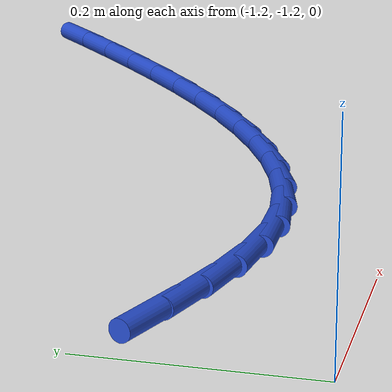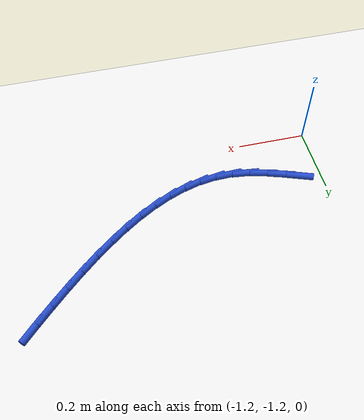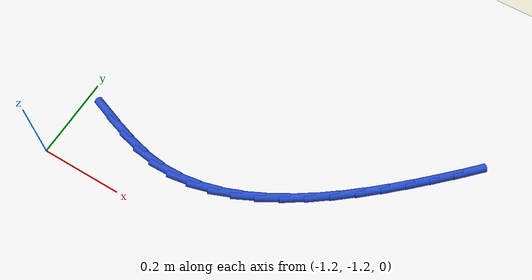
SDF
<sdf version="1.6">
 <world name="default">
  <model name="ground_plane">
   <static>1</static>
   <link name="link">
    <collision name="collision">
     <geometry><plane><normal>0 0 1</normal><size>100 100</size></plane></geometry>
     <surface><friction><ode><mu>100</mu><mu2>50</mu2></ode></friction></surface>
    </collision>
    <visual name="visual">
     <cast_shadows>0</cast_shadows>
     <geometry><plane><normal>0 0 1</normal><size>100 100</size></plane></geometry>
     <material>
      <script><uri>file://media/materials/scripts/gazebo.material</uri><name>Gazebo/WhiteGlow</name></script>
     </material>
    </visual>
   </link>
  </model>
  <model name="line">
   <link name="link_107">
    <pose>-1.1349191760722148 -1.046793136256343 0.01 0 1.57 -0.3491802331097469</pose>
    <collision name="collision">
     <geometry><cylinder><radius>0.01</radius><length>0.08</length></cylinder></geometry>
    </collision>
    <visual name="visual">
     <material>
      <script><name>Gazebo/Blue</name><uri>file://media/materials/scripts/gazebo.material</uri></script>
     </material>
     <geometry><cylinder><radius>0.01</radius><length>0.08</length></cylinder></geometry>
    </visual>
   </link>
   <link name="link_108">
    <pose>-1.0844965754526297 -1.0651519938041012 0.01 0 1.57 -0.3071554523126123</pose>
    <collision name="collision">
     <geometry><cylinder><radius>0.01</radius><length>0.08</length></cylinder></geometry>
    </collision>
    <visual name="visual">
     <material>
      <script><name>Gazebo/Blue</name><uri>file://media/materials/scripts/gazebo.material</uri></script>
     </material>
     <geometry><cylinder><radius>0.01</radius><length>0.08</length></cylinder></geometry>
    </visual>
   </link>
   <link name="link_109">
    <pose>-1.0343974477232567 -1.0810431328177643 0.01 0 1.57 -0.23049470551610435</pose>
    <collision name="collision">
     <geometry><cylinder><radius>0.01</radius><length>0.08</length></cylinder></geometry>
    </collision>
    <visual name="visual">
     <material>
      <script><name>Gazebo/Blue</name><uri>file://media/materials/scripts/gazebo.material</uri></script>
     </material>
     <geometry><cylinder><radius>0.01</radius><length>0.08</length></cylinder></geometry>
    </visual>
   </link>
   <link name="link_110">
    <pose>-0.9845674924255619 -1.0927364917181634 0.01 0 1.57 -0.11574833551960549</pose>
    <collision name="collision">
     <geometry><cylinder><radius>0.01</radius><length>0.08</length></cylinder></geometry>
    </collision>
    <visual name="visual">
     <material>
      <script><name>Gazebo/Blue</name><uri>file://media/materials/scripts/gazebo.material</uri></script>
     </material>
     <geometry><cylinder><radius>0.01</radius><length>0.08</length></cylinder></geometry>
    </visual>
   </link>
   <link name="link_111">
    <pose>-0.9349526061661336 -1.0985051173203935 0.01 0 1.57 0.0246745908671245</pose>
    <collision name="collision">
     <geometry><cylinder><radius>0.01</radius><length>0.08</length></cylinder></geometry>
    </collision>
    <visual name="visual">
     <material>
      <script><name>Gazebo/Blue</name><uri>file://media/materials/scripts/gazebo.material</uri></script>
     </material>
     <geometry><cylinder><radius>0.01</radius><length>0.08</length></cylinder></geometry>
    </visual>
   </link>
   <link name="link_112">
    <pose>-0.8855407560410551 -1.0972856526400876 0.01 0 1.57 0.15722142728989127</pose>
    <collision name="collision">
     <geometry><cylinder><radius>0.01</radius><length>0.08</length></cylinder></geometry>
    </collision>
    <visual name="visual">
     <material>
      <script><name>Gazebo/Blue</name><uri>file://media/materials/scripts/gazebo.material</uri></script>
     </material>
     <geometry><cylinder><radius>0.01</radius><length>0.08</length></cylinder></geometry>
    </visual>
   </link>
   <link name="link_113">
    <pose>-0.8364139181074226 -1.0894975850832735 0.01 0 1.57 0.2746629365647314</pose>
    <collision name="collision">
     <geometry><cylinder><radius>0.01</radius><length>0.08</length></cylinder></geometry>
    </collision>
    <visual name="visual">
     <material>
      <script><name>Gazebo/Blue</name><uri>file://media/materials/scripts/gazebo.material</uri></script>
     </material>
     <geometry><cylinder><radius>0.01</radius><length>0.08</length></cylinder></geometry>
    </visual>
   </link>
   <link name="link_114">
    <pose>-0.7876668108203452 -1.0757613934636507 0.01 0 1.57 0.37611938677544743</pose>
    <collision name="collision">
     <geometry><cylinder><radius>0.01</radius><length>0.08</length></cylinder></geometry>
    </collision>
    <visual name="visual">
     <material>
      <script><name>Gazebo/Blue</name><uri>file://media/materials/scripts/gazebo.material</uri></script>
     </material>
     <geometry><cylinder><radius>0.01</radius><length>0.08</length></cylinder></geometry>
    </visual>
   </link>
   <link name="link_115">
    <pose>-0.7393941526349286 -1.0566975565949173 0.01 0 1.57 0.4622926278595795</pose>
    <collision name="collision">
     <geometry><cylinder><radius>0.01</radius><length>0.08</length></cylinder></geometry>
    </collision>
    <visual name="visual">
     <material>
      <script><name>Gazebo/Blue</name><uri>file://media/materials/scripts/gazebo.material</uri></script>
     </material>
     <geometry><cylinder><radius>0.01</radius><length>0.08</length></cylinder></geometry>
    </visual>
   </link>
   <link name="link_116">
    <pose>-0.6916906620062795 -1.0329265532907712 0.01 0 1.57 0.5346776399522354</pose>
    <collision name="collision">
     <geometry><cylinder><radius>0.01</radius><length>0.08</length></cylinder></geometry>
    </collision>
    <visual name="visual">
     <material>
      <script><name>Gazebo/Blue</name><uri>file://media/materials/scripts/gazebo.material</uri></script>
     </material>
     <geometry><cylinder><radius>0.01</radius><length>0.08</length></cylinder></geometry>
    </visual>
   </link>
   <link name="link_117">
    <pose>-0.6446510573895046 -1.0050688623649104 0.01 0 1.57 0.5949988331633154</pose>
    <collision name="collision">
     <geometry><cylinder><radius>0.01</radius><length>0.08</length></cylinder></geometry>
    </collision>
    <visual name="visual">
     <material>
      <script><name>Gazebo/Blue</name><uri>file://media/materials/scripts/gazebo.material</uri></script>
     </material>
     <geometry><cylinder><radius>0.01</radius><length>0.08</length></cylinder></geometry>
    </visual>
   </link>
   <link name="link_118">
    <pose>-0.5983700572397116 -0.9737449626310348 0.01 0 1.57 0.6448925926214893</pose>
    <collision name="collision">
     <geometry><cylinder><radius>0.01</radius><length>0.08</length></cylinder></geometry>
    </collision>
    <visual name="visual">
     <material>
      <script><name>Gazebo/Blue</name><uri>file://media/materials/scripts/gazebo.material</uri></script>
     </material>
     <geometry><cylinder><radius>0.01</radius><length>0.08</length></cylinder></geometry>
    </visual>
   </link>
   <link name="link_119">
    <pose>-0.552942380012007 -0.9395753329028415 0.01 0 1.57 0.6857625255420088</pose>
    <collision name="collision">
     <geometry><cylinder><radius>0.01</radius><length>0.08</length></cylinder></geometry>
    </collision>
    <visual name="visual">
     <material>
      <script><name>Gazebo/Blue</name><uri>file://media/materials/scripts/gazebo.material</uri></script>
     </material>
     <geometry><cylinder><radius>0.01</radius><length>0.08</length></cylinder></geometry>
    </visual>
   </link>
   <link name="link_120">
    <pose>-0.5084627441614974 -0.9031804519940291 0.01 0 1.57 0.718730722265602</pose>
    <collision name="collision">
     <geometry><cylinder><radius>0.01</radius><length>0.08</length></cylinder></geometry>
    </collision>
    <visual name="visual">
     <material>
      <script><name>Gazebo/Blue</name><uri>file://media/materials/scripts/gazebo.material</uri></script>
     </material>
     <geometry><cylinder><radius>0.01</radius><length>0.08</length></cylinder></geometry>
    </visual>
   </link>
   <link name="link_121">
    <pose>-0.4650258681432898 -0.865180798718296 0.01 0 1.57 0.7446319512710262</pose>
    <collision name="collision">
     <geometry><cylinder><radius>0.01</radius><length>0.08</length></cylinder></geometry>
    </collision>
    <visual name="visual">
     <material>
      <script><name>Gazebo/Blue</name><uri>file://media/materials/scripts/gazebo.material</uri></script>
     </material>
     <geometry><cylinder><radius>0.01</radius><length>0.08</length></cylinder></geometry>
    </visual>
   </link>
   <link name="link_122">
    <pose>-0.42272647041249034 -0.8261968518893401 0.01 0 1.57 0.7640193378882485</pose>
    <collision name="collision">
     <geometry><cylinder><radius>0.01</radius><length>0.08</length></cylinder></geometry>
    </collision>
    <visual name="visual">
     <material>
      <script><name>Gazebo/Blue</name><uri>file://media/materials/scripts/gazebo.material</uri></script>
     </material>
     <geometry><cylinder><radius>0.01</radius><length>0.08</length></cylinder></geometry>
    </visual>
   </link>
   <link name="link_123">
    <pose>-0.3816592694242072 -0.7868490903208606 0.01 0 1.57 0.7785111057870003</pose>
    <collision name="collision">
     <geometry><cylinder><radius>0.01</radius><length>0.08</length></cylinder></geometry>
    </collision>
    <visual name="visual">
     <material>
      <script><name>Gazebo/Blue</name><uri>file://media/materials/scripts/gazebo.material</uri></script>
     </material>
     <geometry><cylinder><radius>0.01</radius><length>0.08</length></cylinder></geometry>
    </visual>
   </link>
   <link name="link_124">
    <pose>-0.3419244517042064 -0.7476578495072078 0.01 0 1.57 0.7961758617797771</pose>
    <collision name="collision">
     <geometry><cylinder><radius>0.01</radius><length>0.08</length></cylinder></geometry>
    </collision>
    <visual name="visual">
     <material>
      <script><name>Gazebo/Blue</name><uri>file://media/materials/scripts/gazebo.material</uri></script>
     </material>
     <geometry><cylinder><radius>0.01</radius><length>0.08</length></cylinder></geometry>
    </visual>
   </link>
  </model>
 </world>
</sdf>
